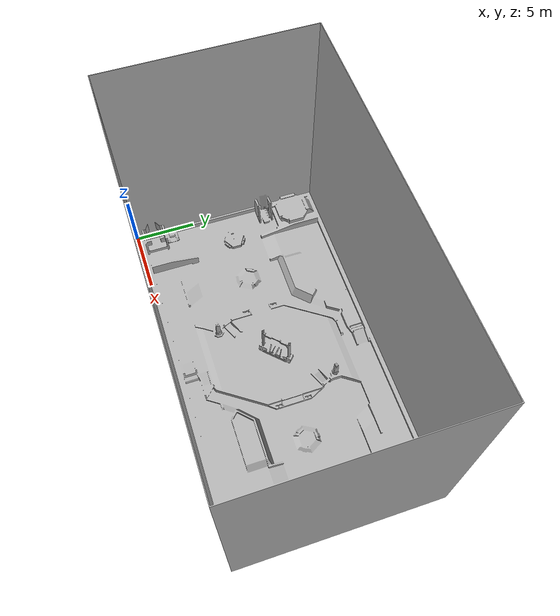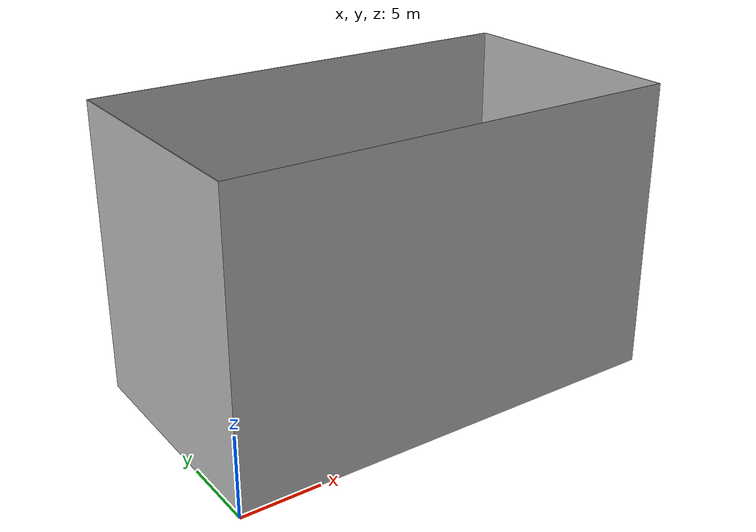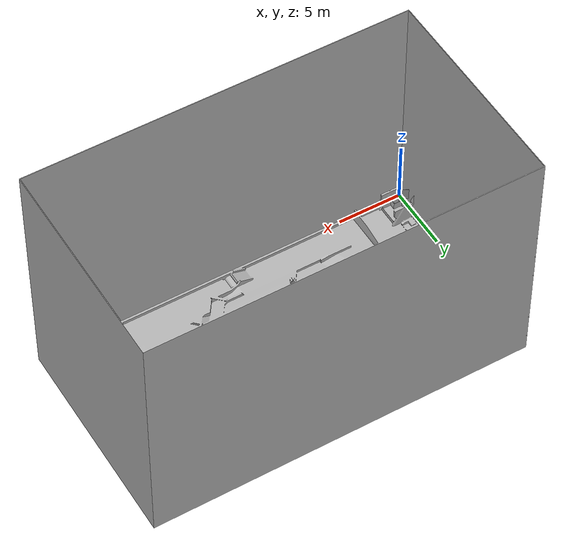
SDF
<?xml version='1.0' encoding='utf-8'?>
<sdf version='1.7'>
  <world name='default'>
    <!-- Physics -->
    <plugin filename="libignition-gazebo-physics-system.so" name="ignition::gazebo::systems::Physics">
    </plugin>

    <!-- Forwards simulation state to the GUI -->
    <plugin filename="libignition-gazebo-scene-broadcaster-system.so" name="ignition::gazebo::systems::SceneBroadcaster">
    </plugin>

    <!-- Processes user commands, like translate and create -->
    <plugin filename="libignition-gazebo-user-commands-system.so" name="ignition::gazebo::systems::UserCommands">
    </plugin>

    <!-- Generates rendering sensor data -->
    <plugin filename="libignition-gazebo-sensors-system.so" name="ignition::gazebo::systems::Sensors">
      <render_engine>ogre2</render_engine>
    </plugin>

    <plugin filename="libignition-gazebo-imu-system.so" name="ignition::gazebo::systems::Imu">
    </plugin>

    <light type='directional' name='direct_light'>
      <visualize>false</visualize>
      <cast_shadows>true</cast_shadows>
      <pose>14.6 7.9 10 0 0 0</pose>
      <diffuse>1.0 1.0 1.0 1</diffuse>
      <specular>0.5 0.5 0.5 1</specular>
      <attenuation>
        <range>1000</range>
        <constant>0.9</constant>
        <linear>0.01</linear>
        <quadratic>0.001</quadratic>
      </attenuation>
      <direction>0 0 -1</direction>
    </light>

    <model name='rmuc_2025'>
      <include>
        <uri>../models/rmuc_2025</uri>
      </include>
      <pose>0.0 0.0 0 0 0 0</pose>
      <static>true</static>
    </model>
  </world>
</sdf>

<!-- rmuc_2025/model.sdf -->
<sdf version='1.6'>
  <model name='rmuc_2025'>
    <static>true</static>
    <link name='body'>
      <pose frame=''>14.5 8 0.2 0 0 0</pose>
      <self_collide>0</self_collide>
      <kinematic>0</kinematic>
      <gravity>1</gravity>
      <visual name='visual'>
        <geometry>
          <mesh>
            <uri>./meshes/rmuc_2025.stl</uri>
            <scale>1 1 1</scale>
          </mesh>
        </geometry>
        <material>
          <ambient>0.3 0.3 0.3 1</ambient>
          <diffuse>0.7 0.7 0.7 1</diffuse>
          <specular>0.01 0.01 0.01 1</specular>
        </material>
      </visual>
      <collision name='collision'>
        <geometry>
          <mesh>
            <uri>./meshes/rmuc_2025.stl</uri>
            <scale>1 1 1</scale>
          </mesh>
        </geometry>
      </collision>
    </link>
  </model>
</sdf>
